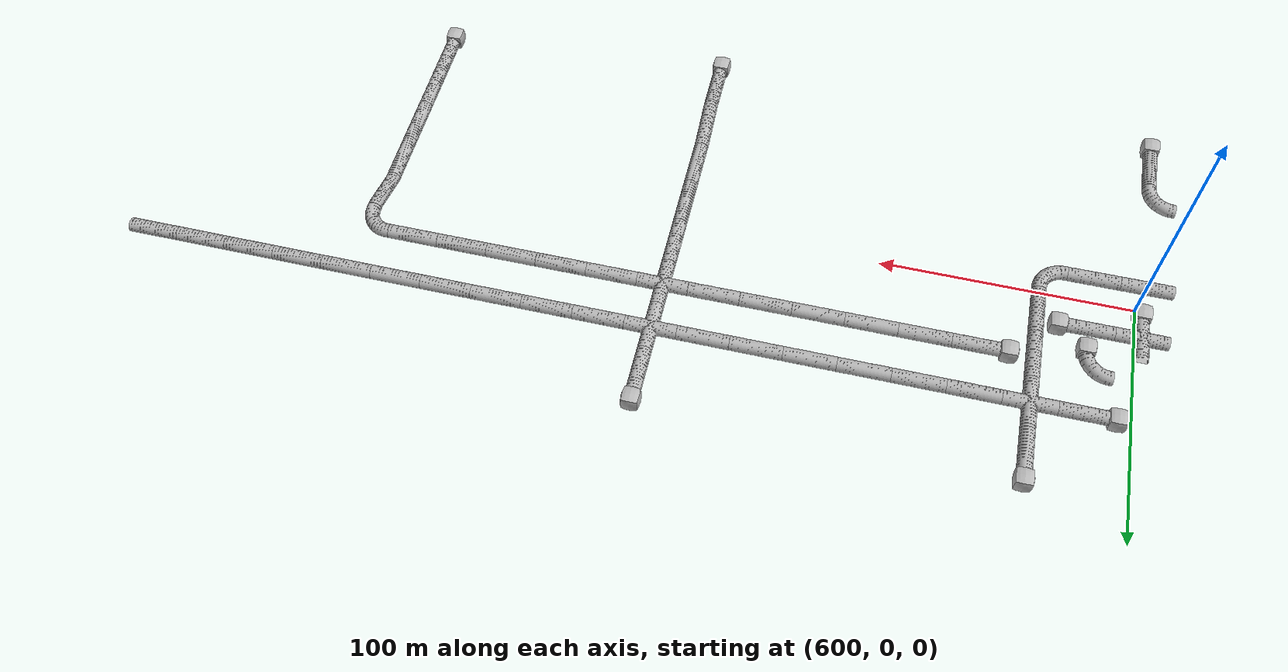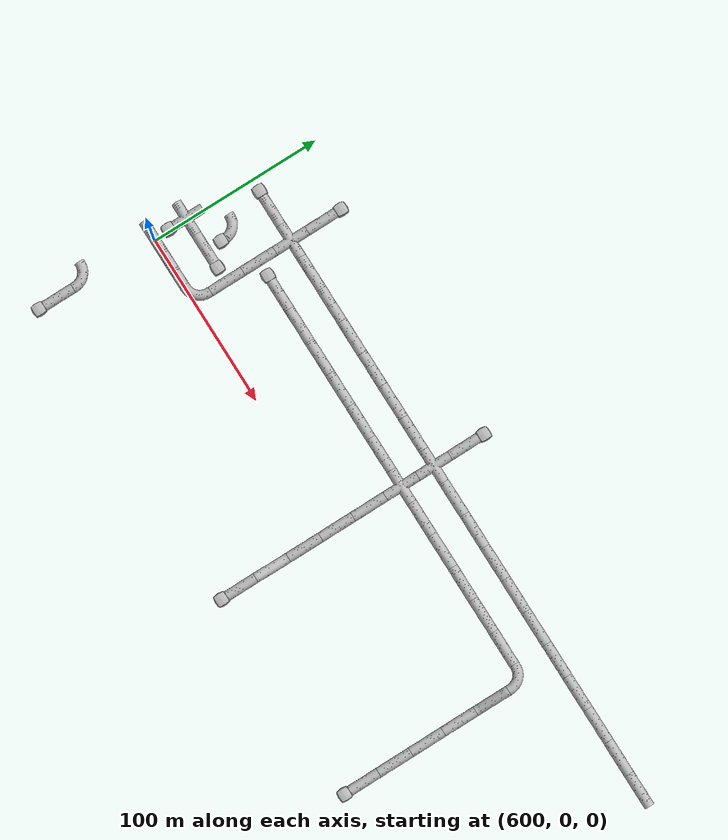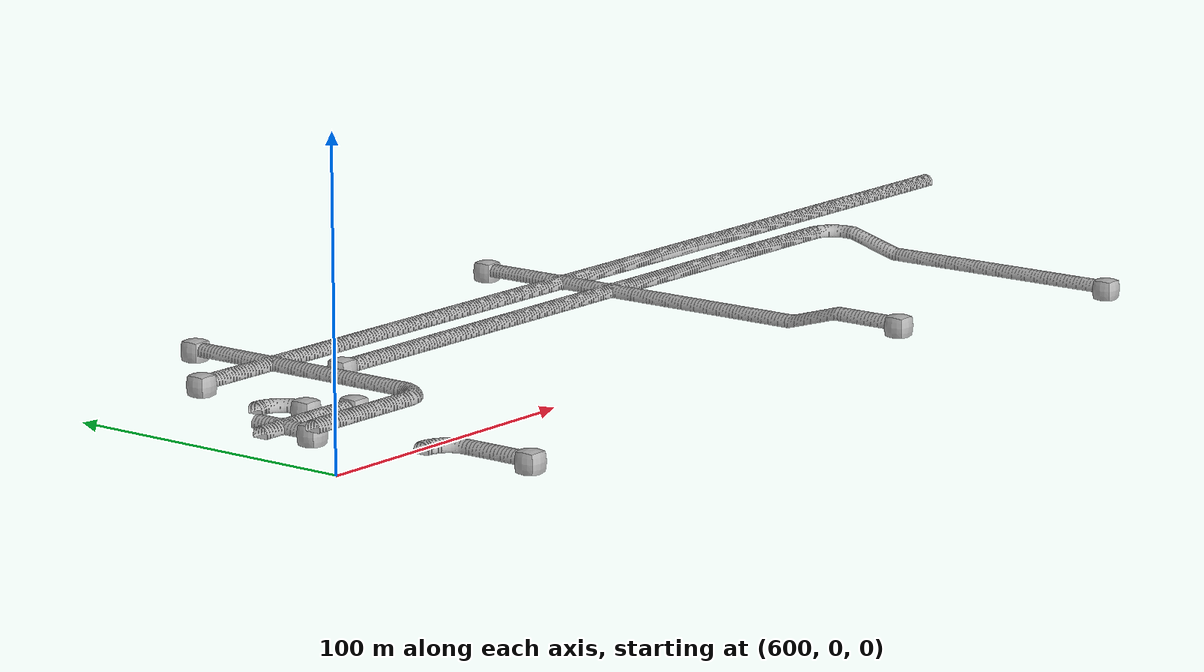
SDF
<sdf version="1.6">
 <world name="tunnel_circuit_04">
  <include>
   <name>tile_27</name>
   <uri>model://tunnel_tile_5</uri>
   <pose>640.000000 80.000000 15.000000 0 0 3.141593</pose>
  </include>
  <include>
   <name>tile_28</name>
   <uri>model://tunnel_tile_blocker</uri>
   <pose>640.000000 91.000000 15.000000 0 0 0.000000</pose>
  </include>
  <include>
   <name>tile_29</name>
   <uri>model://tunnel_tile_5</uri>
   <pose>780.000000 80.000000 15.000000 0 0 3.141593</pose>
  </include>
  <include>
   <name>tile_30</name>
   <uri>model://tunnel_tile_blocker</uri>
   <pose>780.000000 91.000000 15.000000 0 0 0.000000</pose>
  </include>
  <include>
   <name>tile_45</name>
   <uri>model://tunnel_tile_5</uri>
   <pose>620.000000 60.000000 15.000000 0 0 4.712389</pose>
  </include>
  <include>
   <name>tile_46</name>
   <uri>model://tunnel_tile_blocker</uri>
   <pose>609.000000 60.000000 15.000000 0 0 0.000000</pose>
  </include>
  <include>
   <name>tile_47</name>
   <uri>model://tunnel_tile_1</uri>
   <pose>640.000000 60.000000 15.000000 0 0 0.000000</pose>
  </include>
  <include>
   <name>tile_48</name>
   <uri>model://tunnel_tile_5</uri>
   <pose>660.000000 60.000000 15.000000 0 0 1.570796</pose>
  </include>
  <include>
   <name>tile_49</name>
   <uri>model://tunnel_tile_5</uri>
   <pose>680.000000 60.000000 15.000000 0 0 1.570796</pose>
  </include>
  <include>
   <name>tile_50</name>
   <uri>model://tunnel_tile_5</uri>
   <pose>700.000000 60.000000 15.000000 0 0 1.570796</pose>
  </include>
  <include>
   <name>tile_51</name>
   <uri>model://tunnel_tile_5</uri>
   <pose>720.000000 60.000000 15.000000 0 0 1.570796</pose>
  </include>
  <include>
   <name>tile_52</name>
   <uri>model://tunnel_tile_5</uri>
   <pose>740.000000 60.000000 15.000000 0 0 1.570796</pose>
  </include>
  <include>
   <name>tile_53</name>
   <uri>model://tunnel_tile_5</uri>
   <pose>760.000000 60.000000 15.000000 0 0 1.570796</pose>
  </include>
  <include>
   <name>tile_54</name>
   <uri>model://tunnel_tile_1</uri>
   <pose>780.000000 60.000000 15.000000 0 0 0.000000</pose>
  </include>
  <include>
   <name>tile_55</name>
   <uri>model://tunnel_tile_5</uri>
   <pose>800.000000 60.000000 15.000000 0 0 1.570796</pose>
  </include>
  <include>
   <name>tile_56</name>
   <uri>model://tunnel_tile_5</uri>
   <pose>820.000000 60.000000 15.000000 0 0 1.570796</pose>
  </include>
  <include>
   <name>tile_57</name>
   <uri>model://tunnel_tile_5</uri>
   <pose>840.000000 60.000000 15.000000 0 0 1.570796</pose>
  </include>
  <include>
   <name>tile_58</name>
   <uri>model://tunnel_tile_5</uri>
   <pose>860.000000 60.000000 15.000000 0 0 1.570796</pose>
  </include>
  <include>
   <name>tile_59</name>
   <uri>model://tunnel_tile_5</uri>
   <pose>880.000000 60.000000 15.000000 0 0 1.570796</pose>
  </include>
  <include>
   <name>tile_60</name>
   <uri>model://tunnel_tile_5</uri>
   <pose>900.000000 60.000000 15.000000 0 0 1.570796</pose>
  </include>
  <include>
   <name>tile_61</name>
   <uri>model://tunnel_tile_5</uri>
   <pose>920.000000 60.000000 15.000000 0 0 1.570796</pose>
  </include>
  <include>
   <name>tile_62</name>
   <uri>model://tunnel_tile_5</uri>
   <pose>940.000000 60.000000 15.000000 0 0 1.570796</pose>
  </include>
  <include>
   <name>tile_63</name>
   <uri>model://tunnel_tile_5</uri>
   <pose>960.000000 60.000000 15.000000 0 0 1.570796</pose>
  </include>
  <include>
   <name>tile_64</name>
   <uri>model://tunnel_tile_5</uri>
   <pose>980.000000 60.000000 15.000000 0 0 1.570796</pose>
  </include>
  <include>
   <name>tile_121</name>
   <uri>model://tunnel_tile_2</uri>
   <pose>620.000000 40.000000 10.000000 0 0 4.712389</pose>
  </include>
  <include>
   <name>tile_122</name>
   <uri>model://tunnel_tile_blocker</uri>
   <pose>620.000000 29.000000 10.000000 0 0 0.000000</pose>
  </include>
  <include>
   <name>tile_123</name>
   <uri>model://tunnel_tile_5</uri>
   <pose>640.000000 40.000000 15.000000 0 0 3.141593</pose>
  </include>
  <include>
   <name>tile_124</name>
   <uri>model://tunnel_tile_5</uri>
   <pose>660.000000 40.000000 15.000000 0 0 4.712389</pose>
  </include>
  <include>
   <name>tile_125</name>
   <uri>model://tunnel_tile_blocker</uri>
   <pose>649.000000 40.000000 15.000000 0 0 0.000000</pose>
  </include>
  <include>
   <name>tile_126</name>
   <uri>model://tunnel_tile_5</uri>
   <pose>680.000000 40.000000 15.000000 0 0 4.712389</pose>
  </include>
  <include>
   <name>tile_127</name>
   <uri>model://tunnel_tile_5</uri>
   <pose>700.000000 40.000000 15.000000 0 0 4.712389</pose>
  </include>
  <include>
   <name>tile_128</name>
   <uri>model://tunnel_tile_5</uri>
   <pose>720.000000 40.000000 15.000000 0 0 4.712389</pose>
  </include>
  <include>
   <name>tile_129</name>
   <uri>model://tunnel_tile_5</uri>
   <pose>740.000000 40.000000 15.000000 0 0 4.712389</pose>
  </include>
  <include>
   <name>tile_130</name>
   <uri>model://tunnel_tile_5</uri>
   <pose>760.000000 40.000000 15.000000 0 0 4.712389</pose>
  </include>
  <include>
   <name>tile_131</name>
   <uri>model://tunnel_tile_1</uri>
   <pose>780.000000 40.000000 15.000000 0 0 0.000000</pose>
  </include>
  <include>
   <name>tile_132</name>
   <uri>model://tunnel_tile_5</uri>
   <pose>800.000000 40.000000 15.000000 0 0 1.570796</pose>
  </include>
  <include>
   <name>tile_133</name>
   <uri>model://tunnel_tile_5</uri>
   <pose>820.000000 40.000000 15.000000 0 0 1.570796</pose>
  </include>
  <include>
   <name>tile_134</name>
   <uri>model://tunnel_tile_5</uri>
   <pose>840.000000 40.000000 15.000000 0 0 1.570796</pose>
  </include>
  <include>
   <name>tile_135</name>
   <uri>model://tunnel_tile_5</uri>
   <pose>860.000000 40.000000 15.000000 0 0 1.570796</pose>
  </include>
  <include>
   <name>tile_136</name>
   <uri>model://tunnel_tile_5</uri>
   <pose>880.000000 40.000000 15.000000 0 0 1.570796</pose>
  </include>
  <include>
   <name>tile_137</name>
   <uri>model://tunnel_tile_2</uri>
   <pose>900.000000 40.000000 15.000000 0 0 4.712389</pose>
  </include>
  <include>
   <name>tile_161</name>
   <uri>model://tunnel_tile_1</uri>
   <pose>600.000000 20.000000 10.000000 0 0 0.000000</pose>
  </include>
  <include>
   <name>tile_163</name>
   <uri>model://tunnel_tile_blocker</uri>
   <pose>600.000000 9.000000 10.000000 0 0 0.000000</pose>
  </include>
  <include>
   <name>tile_164</name>
   <uri>model://tunnel_tile_5</uri>
   <pose>620.000000 20.000000 10.000000 0 0 1.570796</pose>
  </include>
  <include>
   <name>tile_165</name>
   <uri>model://tunnel_tile_blocker</uri>
   <pose>631.000000 20.000000 10.000000 0 0 0.000000</pose>
  </include>
  <include>
   <name>phone_3</name>
   <uri>model://Phone</uri>
   <pose>623.000000 21.500000 10.000000 -1.570796 0 0.174533</pose>
  </include>
  <include>
   <name>tile_166</name>
   <uri>model://tunnel_tile_5</uri>
   <pose>640.000000 20.000000 15.000000 0 0 3.141593</pose>
  </include>
  <include>
   <name>tile_167</name>
   <uri>model://tunnel_tile_5</uri>
   <pose>780.000000 20.000000 15.000000 0 0 0.000000</pose>
  </include>
  <include>
   <name>tile_168</name>
   <uri>model://tunnel_tile_6</uri>
   <pose>900.000000 20.000000 10.000000 0 0 0.000000</pose>
  </include>
  <include>
   <name>tile_204</name>
   <uri>model://tunnel_tile_5</uri>
   <pose>600.000000 0.000000 15.000000 0 0 1.570796</pose>
  </include>
  <include>
   <name>tile_205</name>
   <uri>model://tunnel_tile_5</uri>
   <pose>620.000000 0.000000 15.000000 0 0 1.570796</pose>
  </include>
  <include>
   <name>tile_206</name>
   <uri>model://tunnel_tile_2</uri>
   <pose>640.000000 0.000000 15.000000 0 0 3.141593</pose>
  </include>
  <include>
   <name>tile_207</name>
   <uri>model://tunnel_tile_5</uri>
   <pose>780.000000 0.000000 15.000000 0 0 0.000000</pose>
  </include>
  <include>
   <name>extinguisher_2</name>
   <uri>model://Extinguisher</uri>
   <pose>779.000000 -1.000000 15.000000 0 0 -0.349066</pose>
  </include>
  <include>
   <name>tile_208</name>
   <uri>model://tunnel_tile_5</uri>
   <pose>900.000000 0.000000 10.000000 0 0 0.000000</pose>
  </include>
  <include>
   <name>tile_223</name>
   <uri>model://tunnel_tile_5</uri>
   <pose>780.000000 -20.000000 15.000000 0 0 0.000000</pose>
  </include>
  <include>
   <name>tile_224</name>
   <uri>model://tunnel_tile_5</uri>
   <pose>900.000000 -20.000000 10.000000 0 0 0.000000</pose>
  </include>
  <include>
   <name>tile_235</name>
   <uri>model://tunnel_tile_2</uri>
   <pose>600.000000 -40.000000 15.000000 0 0 4.712389</pose>
  </include>
  <include>
   <name>tile_236</name>
   <uri>model://tunnel_tile_6</uri>
   <pose>780.000000 -40.000000 15.000000 0 0 3.141593</pose>
  </include>
  <include>
   <name>tile_237</name>
   <uri>model://tunnel_tile_5</uri>
   <pose>900.000000 -40.000000 10.000000 0 0 0.000000</pose>
  </include>
  <include>
   <name>tile_245</name>
   <uri>model://tunnel_tile_5</uri>
   <pose>600.000000 -60.000000 15.000000 0 0 0.000000</pose>
  </include>
  <include>
   <name>tile_246</name>
   <uri>model://tunnel_tile_blocker</uri>
   <pose>600.000000 -71.000000 15.000000 0 0 0.000000</pose>
  </include>
  <include>
   <name>tile_247</name>
   <uri>model://tunnel_tile_5</uri>
   <pose>780.000000 -60.000000 20.000000 0 0 0.000000</pose>
  </include>
  <include>
   <name>tile_248</name>
   <uri>model://tunnel_tile_blocker</uri>
   <pose>780.000000 -71.000000 20.000000 0 0 0.000000</pose>
  </include>
  <include>
   <name>tile_249</name>
   <uri>model://tunnel_tile_5</uri>
   <pose>900.000000 -60.000000 10.000000 0 0 0.000000</pose>
  </include>
  <include>
   <name>tile_250</name>
   <uri>model://tunnel_tile_blocker</uri>
   <pose>900.000000 -71.000000 10.000000 0 0 0.000000</pose>
  </include>
  <include>
   <name>phone_4</name>
   <uri>model://Phone</uri>
   <pose>901.000000 -60.000000 10.000000 -1.570796 0 1.570796</pose>
  </include>
 </world>
</sdf>
